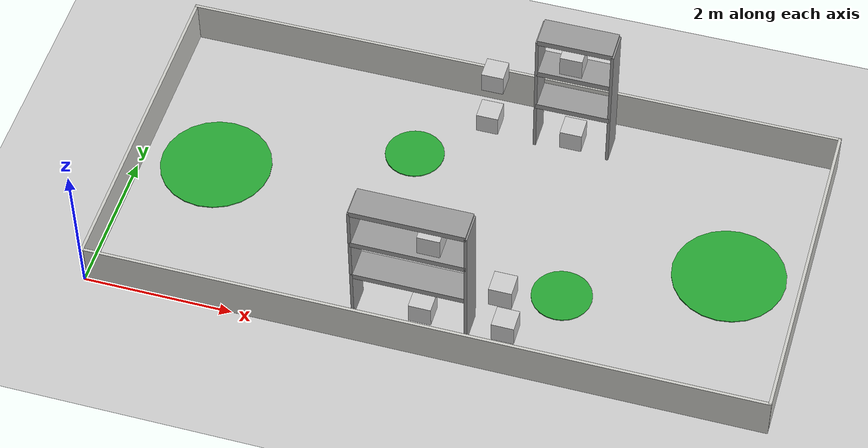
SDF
<sdf version="1.7">
 <world name="default">
  <model name="ground_plane">
   <static>1</static>
   <link name="link">
    <collision name="collision">
     <geometry><plane><normal>0 0 1</normal><size>100 100</size></plane></geometry>
     <surface>
      <contact><collide_bitmask>65535</collide_bitmask></contact>
      <friction><ode><mu>100</mu><mu2>50</mu2></ode></friction>
     </surface>
    </collision>
    <visual name="visual">
     <cast_shadows>0</cast_shadows>
     <geometry><plane><normal>0 0 1</normal><size>100 100</size></plane></geometry>
     <material>
      <script><uri>file://media/materials/scripts/gazebo.material</uri><name>Gazebo/Grey</name></script>
     </material>
    </visual>
   </link>
  </model>
  <model name="border">
   <pose>4.5 2.2438 0 0 -0 0</pose>
   <link name="Wall_21">
    <collision name="Wall_21_Collision">
     <geometry><box><size>9 0.04 0.6</size></box></geometry>
     <pose>0 0 0.3 0 -0 0</pose>
    </collision>
    <visual name="Wall_21_Visual">
     <pose>0 0 0.3 0 -0 0</pose>
     <geometry><box><size>9 0.04 0.6</size></box></geometry>
     <material>
      <script><uri>file://media/materials/scripts/gazebo.material</uri><name>Gazebo/CeilingTiled</name></script>
      <ambient>0.996078 0.47451 0.0196078 1</ambient>
     </material>
     <meta><layer>0</layer></meta>
    </visual>
    <pose>0 2.225 0 0 -0 0</pose>
   </link>
   <link name="Wall_23">
    <collision name="Wall_23_Collision">
     <geometry><box><size>4.49 0.04 0.6</size></box></geometry>
     <pose>0 0 0.3 0 -0 0</pose>
    </collision>
    <visual name="Wall_23_Visual">
     <pose>0 0 0.3 0 -0 0</pose>
     <geometry><box><size>4.49 0.04 0.6</size></box></geometry>
     <material>
      <script><uri>file://media/materials/scripts/gazebo.material</uri><name>Gazebo/CeilingTiled</name></script>
      <ambient>0.996078 0.47451 0.0196078 1</ambient>
     </material>
     <meta><layer>0</layer></meta>
    </visual>
    <pose>-4.48 0 0 0 -0 -1.5708</pose>
   </link>
   <link name="Wall_26">
    <collision name="Wall_26_Collision">
     <geometry><box><size>9 0.04 0.6</size></box></geometry>
     <pose>0 0 0.3 0 -0 0</pose>
    </collision>
    <visual name="Wall_26_Visual">
     <pose>0 0 0.3 0 -0 0</pose>
     <geometry><box><size>9 0.04 0.6</size></box></geometry>
     <material>
      <script><uri>file://media/materials/scripts/gazebo.material</uri><name>Gazebo/CeilingTiled</name></script>
      <ambient>0.996078 0.47451 0.0196078 1</ambient>
     </material>
     <meta><layer>0</layer></meta>
    </visual>
    <pose>0 -2.225 0 0 -0 0</pose>
   </link>
   <link name="Wall_28">
    <collision name="Wall_28_Collision">
     <geometry><box><size>4.49 0.04 0.6</size></box></geometry>
     <pose>0 0 0.3 0 -0 0</pose>
    </collision>
    <visual name="Wall_28_Visual">
     <pose>0 0 0.3 0 -0 0</pose>
     <geometry><box><size>4.49 0.04 0.6</size></box></geometry>
     <material>
      <script><uri>file://media/materials/scripts/gazebo.material</uri><name>Gazebo/CeilingTiled</name></script>
      <ambient>0.996078 0.47451 0.0196078 1</ambient>
     </material>
     <meta><layer>0</layer></meta>
    </visual>
    <pose>4.48 0 0 0 -0 -1.5708</pose>
   </link>
   <static>1</static>
  </model>
  <model name="sign">
   <static>1</static>
   <link name="link_1">
    <inertial>
     <mass>0.0144476</mass>
     <inertia>
      <ixx>0.00090323</ixx>
      <ixy>0</ixy>
      <ixz>0</ixz>
      <iyy>0.00090323</iyy>
      <iyz>0</iyz>
      <izz>0.00180595</izz>
     </inertia>
    </inertial>
    <pose>-3.625 -0 0 0 -0 0</pose>
    <visual name="visual">
     <geometry><cylinder><radius>0.75</radius><length>0.014471</length></cylinder></geometry>
     <material>
      <lighting>1</lighting>
      <script><uri>file://media/materials/scripts/gazebo.material</uri><name>Gazebo/Green</name></script>
      <shader type="pixel"><normal_map>__default__</normal_map></shader>
      <ambient>0.3 0.3 0.3 1</ambient>
      <diffuse>0.7 0.7 0.7 1</diffuse>
      <specular>0.01 0.01 0.01 1</specular>
      <emissive>0 0 0 1</emissive>
     </material>
    </visual>
    <collision name="collision">
     <geometry><cylinder><radius>0.75</radius><length>0.014471</length></cylinder></geometry>
     <surface>
      <friction>
       <ode><mu>1</mu><mu2>1</mu2><fdir1>0 0 0</fdir1><slip1>0</slip1><slip2>0</slip2></ode>
       <torsional>
        <coefficient>1</coefficient>
        <patch_radius>0</patch_radius>
        <surface_radius>0</surface_radius>
        <use_patch_radius>1</use_patch_radius>
        <ode><slip>0</slip></ode>
       </torsional>
      </friction>
      <bounce><restitution_coefficient>0</restitution_coefficient><threshold>1e+06</threshold></bounce>
      <contact>
       <collide_without_contact>0</collide_without_contact>
       <collide_without_contact_bitmask>1</collide_without_contact_bitmask>
       <collide_bitmask>1</collide_bitmask>
       <ode>
        <soft_cfm>0</soft_cfm>
        <soft_erp>0.2</soft_erp>
        <kp>1e+13</kp>
        <kd>1</kd>
        <max_vel>0.01</max_vel>
        <min_depth>0</min_depth>
       </ode>
       <bullet>
        <split_impulse>1</split_impulse>
        <split_impulse_penetration_threshold>-0.01</split_impulse_penetration_threshold>
        <soft_cfm>0</soft_cfm>
        <soft_erp>0.2</soft_erp>
        <kp>1e+13</kp>
        <kd>1</kd>
       </bullet>
      </contact>
     </surface>
    </collision>
   </link>
   <link name="link_1_clone">
    <inertial>
     <mass>0.0144476</mass>
     <inertia>
      <ixx>0.00090323</ixx>
      <ixy>0</ixy>
      <ixz>0</ixz>
      <iyy>0.00090323</iyy>
      <iyz>0</iyz>
      <izz>0.00180595</izz>
     </inertia>
    </inertial>
    <pose>3.375 -0 0 0 -0 0</pose>
    <visual name="visual">
     <geometry><cylinder><radius>0.75</radius><length>0.014471</length></cylinder></geometry>
     <material>
      <lighting>1</lighting>
      <script><uri>file://media/materials/scripts/gazebo.material</uri><name>Gazebo/Green</name></script>
      <shader type="pixel"><normal_map>__default__</normal_map></shader>
      <ambient>0.3 0.3 0.3 1</ambient>
      <diffuse>0.7 0.7 0.7 1</diffuse>
      <specular>0.01 0.01 0.01 1</specular>
      <emissive>0 0 0 1</emissive>
     </material>
    </visual>
    <collision name="collision">
     <geometry><cylinder><radius>0.75</radius><length>0.014471</length></cylinder></geometry>
     <surface>
      <friction>
       <ode><mu>1</mu><mu2>1</mu2><fdir1>0 0 0</fdir1><slip1>0</slip1><slip2>0</slip2></ode>
       <torsional>
        <coefficient>1</coefficient>
        <patch_radius>0</patch_radius>
        <surface_radius>0</surface_radius>
        <use_patch_radius>1</use_patch_radius>
        <ode><slip>0</slip></ode>
       </torsional>
      </friction>
      <bounce><restitution_coefficient>0</restitution_coefficient><threshold>1e+06</threshold></bounce>
      <contact>
       <collide_without_contact>0</collide_without_contact>
       <collide_without_contact_bitmask>1</collide_without_contact_bitmask>
       <collide_bitmask>1</collide_bitmask>
       <ode>
        <soft_cfm>0</soft_cfm>
        <soft_erp>0.2</soft_erp>
        <kp>1e+13</kp>
        <kd>1</kd>
        <max_vel>0.01</max_vel>
        <min_depth>0</min_depth>
       </ode>
       <bullet>
        <split_impulse>1</split_impulse>
        <split_impulse_penetration_threshold>-0.01</split_impulse_penetration_threshold>
        <soft_cfm>0</soft_cfm>
        <soft_erp>0.2</soft_erp>
        <kp>1e+13</kp>
        <kd>1</kd>
       </bullet>
      </contact>
     </surface>
    </collision>
   </link>
   <link name="link_1_clone_0">
    <inertial>
     <mass>0.0144476</mass>
     <inertia>
      <ixx>0.00090323</ixx>
      <ixy>0</ixy>
      <ixz>0</ixz>
      <iyy>0.00090323</iyy>
      <iyz>0</iyz>
      <izz>0.00180595</izz>
     </inertia>
    </inertial>
    <pose>-1.125 0.9 0 0 -0 0</pose>
    <visual name="visual">
     <geometry><cylinder><radius>0.4</radius><length>0.014471</length></cylinder></geometry>
     <material>
      <lighting>1</lighting>
      <script><uri>file://media/materials/scripts/gazebo.material</uri><name>Gazebo/Green</name></script>
      <shader type="pixel"><normal_map>__default__</normal_map></shader>
      <ambient>0.3 0.3 0.3 1</ambient>
      <diffuse>0.7 0.7 0.7 1</diffuse>
      <specular>0.01 0.01 0.01 1</specular>
      <emissive>0 0 0 1</emissive>
      <texture><diffuse>sign_1.png</diffuse></texture>
     </material>
    </visual>
    <collision name="collision">
     <geometry><cylinder><radius>0.4</radius><length>0.014471</length></cylinder></geometry>
     <surface>
      <friction>
       <ode><mu>1</mu><mu2>1</mu2><fdir1>0 0 0</fdir1><slip1>0</slip1><slip2>0</slip2></ode>
       <torsional>
        <coefficient>1</coefficient>
        <patch_radius>0</patch_radius>
        <surface_radius>0</surface_radius>
        <use_patch_radius>1</use_patch_radius>
        <ode><slip>0</slip></ode>
       </torsional>
      </friction>
      <bounce><restitution_coefficient>0</restitution_coefficient><threshold>1e+06</threshold></bounce>
      <contact>
       <collide_without_contact>0</collide_without_contact>
       <collide_without_contact_bitmask>1</collide_without_contact_bitmask>
       <collide_bitmask>1</collide_bitmask>
       <ode>
        <soft_cfm>0</soft_cfm>
        <soft_erp>0.2</soft_erp>
        <kp>1e+13</kp>
        <kd>1</kd>
        <max_vel>0.01</max_vel>
        <min_depth>0</min_depth>
       </ode>
       <bullet>
        <split_impulse>1</split_impulse>
        <split_impulse_penetration_threshold>-0.01</split_impulse_penetration_threshold>
        <soft_cfm>0</soft_cfm>
        <soft_erp>0.2</soft_erp>
        <kp>1e+13</kp>
        <kd>1</kd>
       </bullet>
      </contact>
     </surface>
    </collision>
   </link>
   <link name="link_1_clone_0_clone">
    <inertial>
     <mass>0.0144476</mass>
     <inertia>
      <ixx>0.00090323</ixx>
      <ixy>0</ixy>
      <ixz>0</ixz>
      <iyy>0.00090323</iyy>
      <iyz>0</iyz>
      <izz>0.00180595</izz>
     </inertia>
    </inertial>
    <pose>1.375 -0.9 0 0 -0 0</pose>
    <visual name="visual">
     <geometry><cylinder><radius>0.4</radius><length>0.014471</length></cylinder></geometry>
     <material>
      <lighting>1</lighting>
      <script><uri>file://media/materials/scripts/gazebo.material</uri><name>Gazebo/Green</name></script>
      <shader type="pixel"><normal_map>__default__</normal_map></shader>
      <ambient>0.3 0.3 0.3 1</ambient>
      <diffuse>0.7 0.7 0.7 1</diffuse>
      <specular>0.01 0.01 0.01 1</specular>
      <emissive>0 0 0 1</emissive>
      <texture><diffuse>sign_2.png</diffuse></texture>
     </material>
    </visual>
    <collision name="collision">
     <geometry><cylinder><radius>0.4</radius><length>0.014471</length></cylinder></geometry>
     <surface>
      <friction>
       <ode><mu>1</mu><mu2>1</mu2><fdir1>0 0 0</fdir1><slip1>0</slip1><slip2>0</slip2></ode>
       <torsional>
        <coefficient>1</coefficient>
        <patch_radius>0</patch_radius>
        <surface_radius>0</surface_radius>
        <use_patch_radius>1</use_patch_radius>
        <ode><slip>0</slip></ode>
       </torsional>
      </friction>
      <bounce><restitution_coefficient>0</restitution_coefficient><threshold>1e+06</threshold></bounce>
      <contact>
       <collide_without_contact>0</collide_without_contact>
       <collide_without_contact_bitmask>1</collide_without_contact_bitmask>
       <collide_bitmask>1</collide_bitmask>
       <ode>
        <soft_cfm>0</soft_cfm>
        <soft_erp>0.2</soft_erp>
        <kp>1e+13</kp>
        <kd>1</kd>
        <max_vel>0.01</max_vel>
        <min_depth>0</min_depth>
       </ode>
       <bullet>
        <split_impulse>1</split_impulse>
        <split_impulse_penetration_threshold>-0.01</split_impulse_penetration_threshold>
        <soft_cfm>0</soft_cfm>
        <soft_erp>0.2</soft_erp>
        <kp>1e+13</kp>
        <kd>1</kd>
       </bullet>
      </contact>
     </surface>
    </collision>
   </link>
   <static>0</static>
   <pose>4.63 2.3 0.007235 0 -0 0</pose>
  </model>
  <model name="Shelf_2">
   <static>1</static>
   <link name="link_3">
    <inertial>
     <mass>1</mass>
     <inertia>
      <ixx>0.166667</ixx>
      <ixy>0</ixy>
      <ixz>0</ixz>
      <iyy>0.166667</iyy>
      <iyz>0</iyz>
      <izz>0.166667</izz>
     </inertia>
    </inertial>
    <pose>-0.5 0 -0.238 0 -0 0</pose>
    <visual name="visual">
     <geometry><box><size>0.04 0.4 2</size></box></geometry>
     <material>
      <lighting>1</lighting>
      <script><uri>file://media/materials/scripts/gazebo.material</uri><name>Gazebo/Grey</name></script>
      <shader type="pixel"><normal_map>__default__</normal_map></shader>
      <ambient>0.3 0.3 0.3 1</ambient>
      <diffuse>0.7 0.7 0.7 1</diffuse>
      <specular>0.01 0.01 0.01 1</specular>
      <emissive>0 0 0 1</emissive>
     </material>
    </visual>
    <collision name="collision">
     <geometry><box><size>0.04 0.4 2</size></box></geometry>
     <surface>
      <friction>
       <ode><mu>1</mu><mu2>1</mu2><fdir1>0 0 0</fdir1><slip1>0</slip1><slip2>0</slip2></ode>
       <torsional>
        <coefficient>1</coefficient>
        <patch_radius>0</patch_radius>
        <surface_radius>0</surface_radius>
        <use_patch_radius>1</use_patch_radius>
        <ode><slip>0</slip></ode>
       </torsional>
      </friction>
      <bounce><restitution_coefficient>0</restitution_coefficient><threshold>1e+06</threshold></bounce>
      <contact>
       <collide_without_contact>0</collide_without_contact>
       <collide_without_contact_bitmask>1</collide_without_contact_bitmask>
       <collide_bitmask>1</collide_bitmask>
       <ode>
        <soft_cfm>0</soft_cfm>
        <soft_erp>0.2</soft_erp>
        <kp>1e+13</kp>
        <kd>1</kd>
        <max_vel>0.01</max_vel>
        <min_depth>0</min_depth>
       </ode>
       <bullet>
        <split_impulse>1</split_impulse>
        <split_impulse_penetration_threshold>-0.01</split_impulse_penetration_threshold>
        <soft_cfm>0</soft_cfm>
        <soft_erp>0.2</soft_erp>
        <kp>1e+13</kp>
        <kd>1</kd>
       </bullet>
      </contact>
     </surface>
    </collision>
   </link>
   <link name="link_3_clone">
    <inertial>
     <mass>1</mass>
     <inertia>
      <ixx>0.166667</ixx>
      <ixy>0</ixy>
      <ixz>0</ixz>
      <iyy>0.166667</iyy>
      <iyz>0</iyz>
      <izz>0.166667</izz>
     </inertia>
    </inertial>
    <pose>0.5 0 -0.238 0 -0 0</pose>
    <visual name="visual">
     <geometry><box><size>0.04 0.4 2</size></box></geometry>
     <material>
      <lighting>1</lighting>
      <script><uri>file://media/materials/scripts/gazebo.material</uri><name>Gazebo/Grey</name></script>
      <shader type="pixel"><normal_map>__default__</normal_map></shader>
      <ambient>0.3 0.3 0.3 1</ambient>
      <diffuse>0.7 0.7 0.7 1</diffuse>
      <specular>0.01 0.01 0.01 1</specular>
      <emissive>0 0 0 1</emissive>
     </material>
    </visual>
    <collision name="collision">
     <geometry><box><size>0.04 0.4 2</size></box></geometry>
     <surface>
      <friction>
       <ode><mu>1</mu><mu2>1</mu2><fdir1>0 0 0</fdir1><slip1>0</slip1><slip2>0</slip2></ode>
       <torsional>
        <coefficient>1</coefficient>
        <patch_radius>0</patch_radius>
        <surface_radius>0</surface_radius>
        <use_patch_radius>1</use_patch_radius>
        <ode><slip>0</slip></ode>
       </torsional>
      </friction>
      <bounce><restitution_coefficient>0</restitution_coefficient><threshold>1e+06</threshold></bounce>
      <contact>
       <collide_without_contact>0</collide_without_contact>
       <collide_without_contact_bitmask>1</collide_without_contact_bitmask>
       <collide_bitmask>1</collide_bitmask>
       <ode>
        <soft_cfm>0</soft_cfm>
        <soft_erp>0.2</soft_erp>
        <kp>1e+13</kp>
        <kd>1</kd>
        <max_vel>0.01</max_vel>
        <min_depth>0</min_depth>
       </ode>
       <bullet>
        <split_impulse>1</split_impulse>
        <split_impulse_penetration_threshold>-0.01</split_impulse_penetration_threshold>
        <soft_cfm>0</soft_cfm>
        <soft_erp>0.2</soft_erp>
        <kp>1e+13</kp>
        <kd>1</kd>
       </bullet>
      </contact>
     </surface>
    </collision>
   </link>
   <link name="link_4">
    <inertial>
     <mass>1</mass>
     <inertia>
      <ixx>0.166667</ixx>
      <ixy>0</ixy>
      <ixz>0</ixz>
      <iyy>0.166667</iyy>
      <iyz>0</iyz>
      <izz>0.166667</izz>
     </inertia>
    </inertial>
    <pose>0 0 -0.458 0 -0 0</pose>
    <visual name="visual">
     <geometry><box><size>1 0.4 0.08</size></box></geometry>
     <material>
      <lighting>1</lighting>
      <script><uri>file://media/materials/scripts/gazebo.material</uri><name>Gazebo/Grey</name></script>
      <shader type="pixel"><normal_map>__default__</normal_map></shader>
      <ambient>0.3 0.3 0.3 1</ambient>
      <diffuse>0.7 0.7 0.7 1</diffuse>
      <specular>0.01 0.01 0.01 1</specular>
      <emissive>0 0 0 1</emissive>
     </material>
    </visual>
    <collision name="collision">
     <geometry><box><size>1 0.4 0.08</size></box></geometry>
     <surface>
      <friction>
       <ode><mu>1</mu><mu2>1</mu2><fdir1>0 0 0</fdir1><slip1>0</slip1><slip2>0</slip2></ode>
       <torsional>
        <coefficient>1</coefficient>
        <patch_radius>0</patch_radius>
        <surface_radius>0</surface_radius>
        <use_patch_radius>1</use_patch_radius>
        <ode><slip>0</slip></ode>
       </torsional>
      </friction>
      <bounce><restitution_coefficient>0</restitution_coefficient><threshold>1e+06</threshold></bounce>
      <contact>
       <collide_without_contact>0</collide_without_contact>
       <collide_without_contact_bitmask>1</collide_without_contact_bitmask>
       <collide_bitmask>1</collide_bitmask>
       <ode>
        <soft_cfm>0</soft_cfm>
        <soft_erp>0.2</soft_erp>
        <kp>1e+13</kp>
        <kd>1</kd>
        <max_vel>0.01</max_vel>
        <min_depth>0</min_depth>
       </ode>
       <bullet>
        <split_impulse>1</split_impulse>
        <split_impulse_penetration_threshold>-0.01</split_impulse_penetration_threshold>
        <soft_cfm>0</soft_cfm>
        <soft_erp>0.2</soft_erp>
        <kp>1e+13</kp>
        <kd>1</kd>
       </bullet>
      </contact>
     </surface>
    </collision>
   </link>
   <link name="link_4_clone">
    <inertial>
     <mass>1</mass>
     <inertia>
      <ixx>0.166667</ixx>
      <ixy>0</ixy>
      <ixz>0</ixz>
      <iyy>0.166667</iyy>
      <iyz>0</iyz>
      <izz>0.166667</izz>
     </inertia>
    </inertial>
    <pose>0 0 0.172 0 -0 0</pose>
    <visual name="visual">
     <geometry><box><size>1 0.4 0.08</size></box></geometry>
     <material>
      <lighting>1</lighting>
      <script><uri>file://media/materials/scripts/gazebo.material</uri><name>Gazebo/Grey</name></script>
      <shader type="pixel"><normal_map>__default__</normal_map></shader>
      <ambient>0.3 0.3 0.3 1</ambient>
      <diffuse>0.7 0.7 0.7 1</diffuse>
      <specular>0.01 0.01 0.01 1</specular>
      <emissive>0 0 0 1</emissive>
     </material>
    </visual>
    <collision name="collision">
     <geometry><box><size>1 0.4 0.08</size></box></geometry>
     <surface>
      <friction>
       <ode><mu>1</mu><mu2>1</mu2><fdir1>0 0 0</fdir1><slip1>0</slip1><slip2>0</slip2></ode>
       <torsional>
        <coefficient>1</coefficient>
        <patch_radius>0</patch_radius>
        <surface_radius>0</surface_radius>
        <use_patch_radius>1</use_patch_radius>
        <ode><slip>0</slip></ode>
       </torsional>
      </friction>
      <bounce><restitution_coefficient>0</restitution_coefficient><threshold>1e+06</threshold></bounce>
      <contact>
       <collide_without_contact>0</collide_without_contact>
       <collide_without_contact_bitmask>1</collide_without_contact_bitmask>
       <collide_bitmask>1</collide_bitmask>
       <ode>
        <soft_cfm>0</soft_cfm>
        <soft_erp>0.2</soft_erp>
        <kp>1e+13</kp>
        <kd>1</kd>
        <max_vel>0.01</max_vel>
        <min_depth>0</min_depth>
       </ode>
       <bullet>
        <split_impulse>1</split_impulse>
        <split_impulse_penetration_threshold>-0.01</split_impulse_penetration_threshold>
        <soft_cfm>0</soft_cfm>
        <soft_erp>0.2</soft_erp>
        <kp>1e+13</kp>
        <kd>1</kd>
       </bullet>
      </contact>
     </surface>
    </collision>
   </link>
   <link name="link_4_clone_clone">
    <inertial>
     <mass>1</mass>
     <inertia>
      <ixx>0.166667</ixx>
      <ixy>0</ixy>
      <ixz>0</ixz>
      <iyy>0.166667</iyy>
      <iyz>0</iyz>
      <izz>0.166667</izz>
     </inertia>
    </inertial>
    <pose>0 0 0.762 0 -0 0</pose>
    <visual name="visual">
     <geometry><box><size>1 0.4 0.08</size></box></geometry>
     <material>
      <lighting>1</lighting>
      <script><uri>file://media/materials/scripts/gazebo.material</uri><name>Gazebo/Grey</name></script>
      <shader type="pixel"><normal_map>__default__</normal_map></shader>
      <ambient>0.3 0.3 0.3 1</ambient>
      <diffuse>0.7 0.7 0.7 1</diffuse>
      <specular>0.01 0.01 0.01 1</specular>
      <emissive>0 0 0 1</emissive>
     </material>
    </visual>
    <collision name="collision">
     <geometry><box><size>1 0.4 0.08</size></box></geometry>
     <surface>
      <friction>
       <ode><mu>1</mu><mu2>1</mu2><fdir1>0 0 0</fdir1><slip1>0</slip1><slip2>0</slip2></ode>
       <torsional>
        <coefficient>1</coefficient>
        <patch_radius>0</patch_radius>
        <surface_radius>0</surface_radius>
        <use_patch_radius>1</use_patch_radius>
        <ode><slip>0</slip></ode>
       </torsional>
      </friction>
      <bounce><restitution_coefficient>0</restitution_coefficient><threshold>1e+06</threshold></bounce>
      <contact>
       <collide_without_contact>0</collide_without_contact>
       <collide_without_contact_bitmask>1</collide_without_contact_bitmask>
       <collide_bitmask>1</collide_bitmask>
       <ode>
        <soft_cfm>0</soft_cfm>
        <soft_erp>0.2</soft_erp>
        <kp>1e+13</kp>
        <kd>1</kd>
        <max_vel>0.01</max_vel>
        <min_depth>0</min_depth>
       </ode>
       <bullet>
        <split_impulse>1</split_impulse>
        <split_impulse_penetration_threshold>-0.01</split_impulse_penetration_threshold>
        <soft_cfm>0</soft_cfm>
        <soft_erp>0.2</soft_erp>
        <kp>1e+13</kp>
        <kd>1</kd>
       </bullet>
      </contact>
     </surface>
    </collision>
   </link>
   <static>0</static>
   <pose>5.5 4 1.23 0 -0 0</pose>
  </model>
  <model name="Shelf_1_clone_0_clone">
   <static>1</static>
   <link name="link_0">
    <inertial>
     <mass>1</mass>
     <inertia>
      <ixx>0.166667</ixx>
      <ixy>0</ixy>
      <ixz>0</ixz>
      <iyy>0.166667</iyy>
      <iyz>0</iyz>
      <izz>0.166667</izz>
     </inertia>
    </inertial>
    <pose>-0.75 0 -0.238 0 -0 0</pose>
    <visual name="visual">
     <geometry><box><size>0.04 0.4 2</size></box></geometry>
     <material>
      <lighting>1</lighting>
      <script><uri>file://media/materials/scripts/gazebo.material</uri><name>Gazebo/Grey</name></script>
      <shader type="pixel"><normal_map>__default__</normal_map></shader>
      <ambient>0.3 0.3 0.3 1</ambient>
      <diffuse>0.7 0.7 0.7 1</diffuse>
      <specular>0.01 0.01 0.01 1</specular>
      <emissive>0 0 0 1</emissive>
     </material>
    </visual>
    <collision name="collision">
     <geometry><box><size>0.04 0.4 2</size></box></geometry>
     <surface>
      <friction>
       <ode><mu>1</mu><mu2>1</mu2><fdir1>0 0 0</fdir1><slip1>0</slip1><slip2>0</slip2></ode>
       <torsional>
        <coefficient>1</coefficient>
        <patch_radius>0</patch_radius>
        <surface_radius>0</surface_radius>
        <use_patch_radius>1</use_patch_radius>
        <ode><slip>0</slip></ode>
       </torsional>
      </friction>
      <bounce><restitution_coefficient>0</restitution_coefficient><threshold>1e+06</threshold></bounce>
      <contact>
       <collide_without_contact>0</collide_without_contact>
       <collide_without_contact_bitmask>1</collide_without_contact_bitmask>
       <collide_bitmask>1</collide_bitmask>
       <ode>
        <soft_cfm>0</soft_cfm>
        <soft_erp>0.2</soft_erp>
        <kp>1e+13</kp>
        <kd>1</kd>
        <max_vel>0.01</max_vel>
        <min_depth>0</min_depth>
       </ode>
       <bullet>
        <split_impulse>1</split_impulse>
        <split_impulse_penetration_threshold>-0.01</split_impulse_penetration_threshold>
        <soft_cfm>0</soft_cfm>
        <soft_erp>0.2</soft_erp>
        <kp>1e+13</kp>
        <kd>1</kd>
       </bullet>
      </contact>
     </surface>
    </collision>
   </link>
   <link name="link_0_clone">
    <inertial>
     <mass>1</mass>
     <inertia>
      <ixx>0.166667</ixx>
      <ixy>0</ixy>
      <ixz>0</ixz>
      <iyy>0.166667</iyy>
      <iyz>0</iyz>
      <izz>0.166667</izz>
     </inertia>
    </inertial>
    <pose>0.75 0 -0.238 0 -0 0</pose>
    <visual name="visual">
     <geometry><box><size>0.04 0.4 2</size></box></geometry>
     <material>
      <lighting>1</lighting>
      <script><uri>file://media/materials/scripts/gazebo.material</uri><name>Gazebo/Grey</name></script>
      <shader type="pixel"><normal_map>__default__</normal_map></shader>
      <ambient>0.3 0.3 0.3 1</ambient>
      <diffuse>0.7 0.7 0.7 1</diffuse>
      <specular>0.01 0.01 0.01 1</specular>
      <emissive>0 0 0 1</emissive>
     </material>
    </visual>
    <collision name="collision">
     <geometry><box><size>0.04 0.4 2</size></box></geometry>
     <surface>
      <friction>
       <ode><mu>1</mu><mu2>1</mu2><fdir1>0 0 0</fdir1><slip1>0</slip1><slip2>0</slip2></ode>
       <torsional>
        <coefficient>1</coefficient>
        <patch_radius>0</patch_radius>
        <surface_radius>0</surface_radius>
        <use_patch_radius>1</use_patch_radius>
        <ode><slip>0</slip></ode>
       </torsional>
      </friction>
      <bounce><restitution_coefficient>0</restitution_coefficient><threshold>1e+06</threshold></bounce>
      <contact>
       <collide_without_contact>0</collide_without_contact>
       <collide_without_contact_bitmask>1</collide_without_contact_bitmask>
       <collide_bitmask>1</collide_bitmask>
       <ode>
        <soft_cfm>0</soft_cfm>
        <soft_erp>0.2</soft_erp>
        <kp>1e+13</kp>
        <kd>1</kd>
        <max_vel>0.01</max_vel>
        <min_depth>0</min_depth>
       </ode>
       <bullet>
        <split_impulse>1</split_impulse>
        <split_impulse_penetration_threshold>-0.01</split_impulse_penetration_threshold>
        <soft_cfm>0</soft_cfm>
        <soft_erp>0.2</soft_erp>
        <kp>1e+13</kp>
        <kd>1</kd>
       </bullet>
      </contact>
     </surface>
    </collision>
   </link>
   <link name="link_1">
    <inertial>
     <mass>1</mass>
     <inertia>
      <ixx>0.166667</ixx>
      <ixy>0</ixy>
      <ixz>0</ixz>
      <iyy>0.166667</iyy>
      <iyz>0</iyz>
      <izz>0.166667</izz>
     </inertia>
    </inertial>
    <pose>0 0 -0.458 0 -0 0</pose>
    <visual name="visual">
     <geometry><box><size>1.5 0.4 0.08</size></box></geometry>
     <material>
      <lighting>1</lighting>
      <script><uri>file://media/materials/scripts/gazebo.material</uri><name>Gazebo/Grey</name></script>
      <shader type="pixel"><normal_map>__default__</normal_map></shader>
      <ambient>0.3 0.3 0.3 1</ambient>
      <diffuse>0.7 0.7 0.7 1</diffuse>
      <specular>0.01 0.01 0.01 1</specular>
      <emissive>0 0 0 1</emissive>
     </material>
    </visual>
    <collision name="collision">
     <geometry><box><size>1.5 0.4 0.08</size></box></geometry>
     <surface>
      <friction>
       <ode><mu>1</mu><mu2>1</mu2><fdir1>0 0 0</fdir1><slip1>0</slip1><slip2>0</slip2></ode>
       <torsional>
        <coefficient>1</coefficient>
        <patch_radius>0</patch_radius>
        <surface_radius>0</surface_radius>
        <use_patch_radius>1</use_patch_radius>
        <ode><slip>0</slip></ode>
       </torsional>
      </friction>
      <bounce><restitution_coefficient>0</restitution_coefficient><threshold>1e+06</threshold></bounce>
      <contact>
       <collide_without_contact>0</collide_without_contact>
       <collide_without_contact_bitmask>1</collide_without_contact_bitmask>
       <collide_bitmask>1</collide_bitmask>
       <ode>
        <soft_cfm>0</soft_cfm>
        <soft_erp>0.2</soft_erp>
        <kp>1e+13</kp>
        <kd>1</kd>
        <max_vel>0.01</max_vel>
        <min_depth>0</min_depth>
       </ode>
       <bullet>
        <split_impulse>1</split_impulse>
        <split_impulse_penetration_threshold>-0.01</split_impulse_penetration_threshold>
        <soft_cfm>0</soft_cfm>
        <soft_erp>0.2</soft_erp>
        <kp>1e+13</kp>
        <kd>1</kd>
       </bullet>
      </contact>
     </surface>
    </collision>
   </link>
   <link name="link_1_clone">
    <inertial>
     <mass>1</mass>
     <inertia>
      <ixx>0.166667</ixx>
      <ixy>0</ixy>
      <ixz>0</ixz>
      <iyy>0.166667</iyy>
      <iyz>0</iyz>
      <izz>0.166667</izz>
     </inertia>
    </inertial>
    <pose>0 0 0.172 0 -0 0</pose>
    <visual name="visual">
     <geometry><box><size>1.5 0.4 0.08</size></box></geometry>
     <material>
      <lighting>1</lighting>
      <script><uri>file://media/materials/scripts/gazebo.material</uri><name>Gazebo/Grey</name></script>
      <shader type="pixel"><normal_map>__default__</normal_map></shader>
      <ambient>0.3 0.3 0.3 1</ambient>
      <diffuse>0.7 0.7 0.7 1</diffuse>
      <specular>0.01 0.01 0.01 1</specular>
      <emissive>0 0 0 1</emissive>
     </material>
    </visual>
    <collision name="collision">
     <geometry><box><size>1.5 0.4 0.08</size></box></geometry>
     <surface>
      <friction>
       <ode><mu>1</mu><mu2>1</mu2><fdir1>0 0 0</fdir1><slip1>0</slip1><slip2>0</slip2></ode>
       <torsional>
        <coefficient>1</coefficient>
        <patch_radius>0</patch_radius>
        <surface_radius>0</surface_radius>
        <use_patch_radius>1</use_patch_radius>
        <ode><slip>0</slip></ode>
       </torsional>
      </friction>
      <bounce><restitution_coefficient>0</restitution_coefficient><threshold>1e+06</threshold></bounce>
      <contact>
       <collide_without_contact>0</collide_without_contact>
       <collide_without_contact_bitmask>1</collide_without_contact_bitmask>
       <collide_bitmask>1</collide_bitmask>
       <ode>
        <soft_cfm>0</soft_cfm>
        <soft_erp>0.2</soft_erp>
        <kp>1e+13</kp>
        <kd>1</kd>
        <max_vel>0.01</max_vel>
        <min_depth>0</min_depth>
       </ode>
       <bullet>
        <split_impulse>1</split_impulse>
        <split_impulse_penetration_threshold>-0.01</split_impulse_penetration_threshold>
        <soft_cfm>0</soft_cfm>
        <soft_erp>0.2</soft_erp>
        <kp>1e+13</kp>
        <kd>1</kd>
       </bullet>
      </contact>
     </surface>
    </collision>
   </link>
   <link name="link_1_clone_clone">
    <inertial>
     <mass>1</mass>
     <inertia>
      <ixx>0.166667</ixx>
      <ixy>0</ixy>
      <ixz>0</ixz>
      <iyy>0.166667</iyy>
      <iyz>0</iyz>
      <izz>0.166667</izz>
     </inertia>
    </inertial>
    <pose>0 0 0.762 0 -0 0</pose>
    <visual name="visual">
     <geometry><box><size>1.5 0.4 0.08</size></box></geometry>
     <material>
      <lighting>1</lighting>
      <script><uri>file://media/materials/scripts/gazebo.material</uri><name>Gazebo/Grey</name></script>
      <shader type="pixel"><normal_map>__default__</normal_map></shader>
      <ambient>0.3 0.3 0.3 1</ambient>
      <diffuse>0.7 0.7 0.7 1</diffuse>
      <specular>0.01 0.01 0.01 1</specular>
      <emissive>0 0 0 1</emissive>
     </material>
    </visual>
    <collision name="collision">
     <geometry><box><size>1.5 0.4 0.08</size></box></geometry>
     <surface>
      <friction>
       <ode><mu>1</mu><mu2>1</mu2><fdir1>0 0 0</fdir1><slip1>0</slip1><slip2>0</slip2></ode>
       <torsional>
        <coefficient>1</coefficient>
        <patch_radius>0</patch_radius>
        <surface_radius>0</surface_radius>
        <use_patch_radius>1</use_patch_radius>
        <ode><slip>0</slip></ode>
       </torsional>
      </friction>
      <bounce><restitution_coefficient>0</restitution_coefficient><threshold>1e+06</threshold></bounce>
      <contact>
       <collide_without_contact>0</collide_without_contact>
       <collide_without_contact_bitmask>1</collide_without_contact_bitmask>
       <collide_bitmask>1</collide_bitmask>
       <ode>
        <soft_cfm>0</soft_cfm>
        <soft_erp>0.2</soft_erp>
        <kp>1e+13</kp>
        <kd>1</kd>
        <max_vel>0.01</max_vel>
        <min_depth>0</min_depth>
       </ode>
       <bullet>
        <split_impulse>1</split_impulse>
        <split_impulse_penetration_threshold>-0.01</split_impulse_penetration_threshold>
        <soft_cfm>0</soft_cfm>
        <soft_erp>0.2</soft_erp>
        <kp>1e+13</kp>
        <kd>1</kd>
       </bullet>
      </contact>
     </surface>
    </collision>
   </link>
   <static>0</static>
   <pose>4.25 0.6 1.23 0 -0 0</pose>
  </model>
  <model name="box_1_6">
   <link name="link">
    <inertial>
     <mass>1</mass>
     <inertia>
      <ixx>0.166667</ixx>
      <ixy>0</ixy>
      <ixz>0</ixz>
      <iyy>0.166667</iyy>
      <iyz>0</iyz>
      <izz>0.166667</izz>
     </inertia>
    </inertial>
    <visual name="visual">
     <geometry><box><size>0.3 0.3 0.3</size></box></geometry>
     <material>
      <script>
       <uri>file://materials_user/scripts</uri>
       <uri>file://materials_user/textures</uri>
       <name>YMC/BoxBanana</name>
      </script>
      <shader type="pixel"><normal_map>__default__</normal_map></shader>
      <ambient>0.8 0.8 0.8 1</ambient>
      <diffuse>0.8 0.8 0.8 1</diffuse>
      <specular>0.5 0.5 0.5 1</specular>
      <emissive>0.5 0.5 0.5 1</emissive>
     </material>
    </visual>
    <collision name="collision">
     <geometry><box><size>0.3 0.3 0.3</size></box></geometry>
     <surface>
      <friction>
       <ode><mu>1</mu><mu2>1</mu2><fdir1>0 0 0</fdir1><slip1>0</slip1><slip2>0</slip2></ode>
       <torsional>
        <coefficient>1</coefficient>
        <patch_radius>0</patch_radius>
        <surface_radius>0</surface_radius>
        <use_patch_radius>1</use_patch_radius>
        <ode><slip>0</slip></ode>
       </torsional>
      </friction>
      <bounce><restitution_coefficient>0</restitution_coefficient><threshold>1e+06</threshold></bounce>
      <contact>
       <collide_without_contact>0</collide_without_contact>
       <collide_without_contact_bitmask>1</collide_without_contact_bitmask>
       <collide_bitmask>1</collide_bitmask>
       <ode>
        <soft_cfm>0</soft_cfm>
        <soft_erp>0.2</soft_erp>
        <kp>1e+13</kp>
        <kd>1</kd>
        <max_vel>0.01</max_vel>
        <min_depth>0</min_depth>
       </ode>
       <bullet>
        <split_impulse>1</split_impulse>
        <split_impulse_penetration_threshold>-0.01</split_impulse_penetration_threshold>
        <soft_cfm>0</soft_cfm>
        <soft_erp>0.2</soft_erp>
        <kp>1e+13</kp>
        <kd>1</kd>
       </bullet>
      </contact>
     </surface>
    </collision>
   </link>
   <static>0</static>
   <pose>4.39334 4 0.961992 3e-06 5e-06 -3e-06</pose>
  </model>
  <model name="box_1_3">
   <link name="link">
    <inertial>
     <mass>1</mass>
     <inertia>
      <ixx>0.166667</ixx>
      <ixy>0</ixy>
      <ixz>0</ixz>
      <iyy>0.166667</iyy>
      <iyz>0</iyz>
      <izz>0.166667</izz>
     </inertia>
    </inertial>
    <visual name="visual">
     <geometry><box><size>0.3 0.3 0.3</size></box></geometry>
     <material>
      <script>
       <uri>file://materials_user/scripts</uri>
       <uri>file://materials_user/textures</uri>
       <name>YMC/BoxBanana</name>
      </script>
      <shader type="pixel"><normal_map>__default__</normal_map></shader>
      <ambient>0.8 0.8 0.8 1</ambient>
      <diffuse>0.8 0.8 0.8 1</diffuse>
      <specular>0.5 0.5 0.5 1</specular>
      <emissive>0.5 0.5 0.5 1</emissive>
     </material>
    </visual>
    <collision name="collision">
     <geometry><box><size>0.3 0.3 0.3</size></box></geometry>
     <surface>
      <friction>
       <ode><mu>1</mu><mu2>1</mu2><fdir1>0 0 0</fdir1><slip1>0</slip1><slip2>0</slip2></ode>
       <torsional>
        <coefficient>1</coefficient>
        <patch_radius>0</patch_radius>
        <surface_radius>0</surface_radius>
        <use_patch_radius>1</use_patch_radius>
        <ode><slip>0</slip></ode>
       </torsional>
      </friction>
      <bounce><restitution_coefficient>0</restitution_coefficient><threshold>1e+06</threshold></bounce>
      <contact>
       <collide_without_contact>0</collide_without_contact>
       <collide_without_contact_bitmask>1</collide_without_contact_bitmask>
       <collide_bitmask>1</collide_bitmask>
       <ode>
        <soft_cfm>0</soft_cfm>
        <soft_erp>0.2</soft_erp>
        <kp>1e+13</kp>
        <kd>1</kd>
        <max_vel>0.01</max_vel>
        <min_depth>0</min_depth>
       </ode>
       <bullet>
        <split_impulse>1</split_impulse>
        <split_impulse_penetration_threshold>-0.01</split_impulse_penetration_threshold>
        <soft_cfm>0</soft_cfm>
        <soft_erp>0.2</soft_erp>
        <kp>1e+13</kp>
        <kd>1</kd>
       </bullet>
      </contact>
     </surface>
    </collision>
   </link>
   <static>0</static>
   <pose>5.44793 4 1.59199 -6e-06 -3e-06 -2e-06</pose>
  </model>
  <model name="box_2_2">
   <link name="link">
    <inertial>
     <mass>1</mass>
     <inertia>
      <ixx>0.166667</ixx>
      <ixy>0</ixy>
      <ixz>0</ixz>
      <iyy>0.166667</iyy>
      <iyz>0</iyz>
      <izz>0.166667</izz>
     </inertia>
    </inertial>
    <visual name="visual">
     <geometry><box><size>0.3 0.3 0.3</size></box></geometry>
     <material>
      <script>
       <uri>file://materials_user/scripts</uri>
       <uri>file://materials_user/textures</uri>
       <name>YMC/BoxBanana</name>
      </script>
      <shader type="pixel"><normal_map>__default__</normal_map></shader>
      <ambient>0.8 0.8 0.8 1</ambient>
      <diffuse>0.8 0.8 0.8 1</diffuse>
      <specular>0.5 0.5 0.5 1</specular>
      <emissive>0.5 0.5 0.5 1</emissive>
     </material>
    </visual>
    <collision name="collision">
     <geometry><box><size>0.3 0.3 0.3</size></box></geometry>
     <surface>
      <friction>
       <ode><mu>1</mu><mu2>1</mu2><fdir1>0 0 0</fdir1><slip1>0</slip1><slip2>0</slip2></ode>
       <torsional>
        <coefficient>1</coefficient>
        <patch_radius>0</patch_radius>
        <surface_radius>0</surface_radius>
        <use_patch_radius>1</use_patch_radius>
        <ode><slip>0</slip></ode>
       </torsional>
      </friction>
      <bounce><restitution_coefficient>0</restitution_coefficient><threshold>1e+06</threshold></bounce>
      <contact>
       <collide_without_contact>0</collide_without_contact>
       <collide_without_contact_bitmask>1</collide_without_contact_bitmask>
       <collide_bitmask>1</collide_bitmask>
       <ode>
        <soft_cfm>0</soft_cfm>
        <soft_erp>0.2</soft_erp>
        <kp>1e+13</kp>
        <kd>1</kd>
        <max_vel>0.01</max_vel>
        <min_depth>0</min_depth>
       </ode>
       <bullet>
        <split_impulse>1</split_impulse>
        <split_impulse_penetration_threshold>-0.01</split_impulse_penetration_threshold>
        <soft_cfm>0</soft_cfm>
        <soft_erp>0.2</soft_erp>
        <kp>1e+13</kp>
        <kd>1</kd>
       </bullet>
      </contact>
     </surface>
    </collision>
   </link>
   <static>0</static>
   <pose>4.50221 0.622148 1.592 0 0 -5e-06</pose>
  </model>
  <model name="box_2_7">
   <link name="link">
    <inertial>
     <mass>1</mass>
     <inertia>
      <ixx>0.166667</ixx>
      <ixy>0</ixy>
      <ixz>0</ixz>
      <iyy>0.166667</iyy>
      <iyz>0</iyz>
      <izz>0.166667</izz>
     </inertia>
    </inertial>
    <visual name="visual">
     <geometry><box><size>0.3 0.3 0.3</size></box></geometry>
     <material>
      <script>
       <uri>file://materials_user/scripts</uri>
       <uri>file://materials_user/textures</uri>
       <name>YMC/BoxBanana</name>
      </script>
      <shader type="pixel"><normal_map>__default__</normal_map></shader>
      <ambient>0.8 0.8 0.8 1</ambient>
      <diffuse>0.8 0.8 0.8 1</diffuse>
      <specular>0.5 0.5 0.5 1</specular>
      <emissive>0.5 0.5 0.5 1</emissive>
     </material>
    </visual>
    <collision name="collision">
     <geometry><box><size>0.3 0.3 0.3</size></box></geometry>
     <surface>
      <friction>
       <ode><mu>1</mu><mu2>1</mu2><fdir1>0 0 0</fdir1><slip1>0</slip1><slip2>0</slip2></ode>
       <torsional>
        <coefficient>1</coefficient>
        <patch_radius>0</patch_radius>
        <surface_radius>0</surface_radius>
        <use_patch_radius>1</use_patch_radius>
        <ode><slip>0</slip></ode>
       </torsional>
      </friction>
      <bounce><restitution_coefficient>0</restitution_coefficient><threshold>1e+06</threshold></bounce>
      <contact>
       <collide_without_contact>0</collide_without_contact>
       <collide_without_contact_bitmask>1</collide_without_contact_bitmask>
       <collide_bitmask>1</collide_bitmask>
       <ode>
        <soft_cfm>0</soft_cfm>
        <soft_erp>0.2</soft_erp>
        <kp>1e+13</kp>
        <kd>1</kd>
        <max_vel>0.01</max_vel>
        <min_depth>0</min_depth>
       </ode>
       <bullet>
        <split_impulse>1</split_impulse>
        <split_impulse_penetration_threshold>-0.01</split_impulse_penetration_threshold>
        <soft_cfm>0</soft_cfm>
        <soft_erp>0.2</soft_erp>
        <kp>1e+13</kp>
        <kd>1</kd>
       </bullet>
      </contact>
     </surface>
    </collision>
   </link>
   <static>0</static>
   <pose>5.44192 0.560849 0.961996 -6e-06 4e-06 -4e-06</pose>
  </model>
  <model name="box_1_10">
   <link name="link">
    <inertial>
     <mass>1</mass>
     <inertia>
      <ixx>0.166667</ixx>
      <ixy>0</ixy>
      <ixz>0</ixz>
      <iyy>0.166667</iyy>
      <iyz>0</iyz>
      <izz>0.166667</izz>
     </inertia>
    </inertial>
    <visual name="visual">
     <geometry><box><size>0.3 0.3 0.3</size></box></geometry>
     <material>
      <script>
       <uri>file://materials_user/scripts</uri>
       <uri>file://materials_user/textures</uri>
       <name>YMC/BoxBanana</name>
      </script>
      <shader type="pixel"><normal_map>__default__</normal_map></shader>
      <ambient>0.8 0.8 0.8 1</ambient>
      <diffuse>0.8 0.8 0.8 1</diffuse>
      <specular>0.5 0.5 0.5 1</specular>
      <emissive>0.5 0.5 0.5 1</emissive>
     </material>
    </visual>
    <collision name="collision">
     <geometry><box><size>0.3 0.3 0.3</size></box></geometry>
     <surface>
      <friction>
       <ode><mu>1</mu><mu2>1</mu2><fdir1>0 0 0</fdir1><slip1>0</slip1><slip2>0</slip2></ode>
       <torsional>
        <coefficient>1</coefficient>
        <patch_radius>0</patch_radius>
        <surface_radius>0</surface_radius>
        <use_patch_radius>1</use_patch_radius>
        <ode><slip>0</slip></ode>
       </torsional>
      </friction>
      <bounce><restitution_coefficient>0</restitution_coefficient><threshold>1e+06</threshold></bounce>
      <contact>
       <collide_without_contact>0</collide_without_contact>
       <collide_without_contact_bitmask>1</collide_without_contact_bitmask>
       <collide_bitmask>1</collide_bitmask>
       <ode>
        <soft_cfm>0</soft_cfm>
        <soft_erp>0.2</soft_erp>
        <kp>1e+13</kp>
        <kd>1</kd>
        <max_vel>0.01</max_vel>
        <min_depth>0</min_depth>
       </ode>
       <bullet>
        <split_impulse>1</split_impulse>
        <split_impulse_penetration_threshold>-0.01</split_impulse_penetration_threshold>
        <soft_cfm>0</soft_cfm>
        <soft_erp>0.2</soft_erp>
        <kp>1e+13</kp>
        <kd>1</kd>
       </bullet>
      </contact>
     </surface>
    </collision>
   </link>
   <static>0</static>
   <pose>4.33232 3.97995 0.154995 5e-06 4e-06 -6e-06</pose>
  </model>
  <model name="box_1_11">
   <link name="link">
    <inertial>
     <mass>1</mass>
     <inertia>
      <ixx>0.166667</ixx>
      <ixy>0</ixy>
      <ixz>0</ixz>
      <iyy>0.166667</iyy>
      <iyz>0</iyz>
      <izz>0.166667</izz>
     </inertia>
    </inertial>
    <visual name="visual">
     <geometry><box><size>0.3 0.3 0.3</size></box></geometry>
     <material>
      <script>
       <uri>file://materials_user/scripts</uri>
       <uri>file://materials_user/textures</uri>
       <name>YMC/BoxBanana</name>
      </script>
      <shader type="pixel"><normal_map>__default__</normal_map></shader>
      <ambient>0.8 0.8 0.8 1</ambient>
      <diffuse>0.8 0.8 0.8 1</diffuse>
      <specular>0.5 0.5 0.5 1</specular>
      <emissive>0.5 0.5 0.5 1</emissive>
     </material>
    </visual>
    <collision name="collision">
     <geometry><box><size>0.3 0.3 0.3</size></box></geometry>
     <surface>
      <friction>
       <ode><mu>1</mu><mu2>1</mu2><fdir1>0 0 0</fdir1><slip1>0</slip1><slip2>0</slip2></ode>
       <torsional>
        <coefficient>1</coefficient>
        <patch_radius>0</patch_radius>
        <surface_radius>0</surface_radius>
        <use_patch_radius>1</use_patch_radius>
        <ode><slip>0</slip></ode>
       </torsional>
      </friction>
      <bounce><restitution_coefficient>0</restitution_coefficient><threshold>1e+06</threshold></bounce>
      <contact>
       <collide_without_contact>0</collide_without_contact>
       <collide_without_contact_bitmask>1</collide_without_contact_bitmask>
       <collide_bitmask>1</collide_bitmask>
       <ode>
        <soft_cfm>0</soft_cfm>
        <soft_erp>0.2</soft_erp>
        <kp>1e+13</kp>
        <kd>1</kd>
        <max_vel>0.01</max_vel>
        <min_depth>0</min_depth>
       </ode>
       <bullet>
        <split_impulse>1</split_impulse>
        <split_impulse_penetration_threshold>-0.01</split_impulse_penetration_threshold>
        <soft_cfm>0</soft_cfm>
        <soft_erp>0.2</soft_erp>
        <kp>1e+13</kp>
        <kd>1</kd>
       </bullet>
      </contact>
     </surface>
    </collision>
   </link>
   <static>0</static>
   <pose>5.48658 3.98871 0.154995 -5e-06 -4e-06 -6e-06</pose>
  </model>
  <model name="box_2_10">
   <link name="link">
    <inertial>
     <mass>1</mass>
     <inertia>
      <ixx>0.166667</ixx>
      <ixy>0</ixy>
      <ixz>0</ixz>
      <iyy>0.166667</iyy>
      <iyz>0</iyz>
      <izz>0.166667</izz>
     </inertia>
    </inertial>
    <visual name="visual">
     <geometry><box><size>0.3 0.3 0.3</size></box></geometry>
     <material>
      <script>
       <uri>file://materials_user/scripts</uri>
       <uri>file://materials_user/textures</uri>
       <name>YMC/BoxBanana</name>
      </script>
      <shader type="pixel"><normal_map>__default__</normal_map></shader>
      <ambient>0.8 0.8 0.8 1</ambient>
      <diffuse>0.8 0.8 0.8 1</diffuse>
      <specular>0.5 0.5 0.5 1</specular>
      <emissive>0.5 0.5 0.5 1</emissive>
     </material>
    </visual>
    <collision name="collision">
     <geometry><box><size>0.3 0.3 0.3</size></box></geometry>
     <surface>
      <friction>
       <ode><mu>1</mu><mu2>1</mu2><fdir1>0 0 0</fdir1><slip1>0</slip1><slip2>0</slip2></ode>
       <torsional>
        <coefficient>1</coefficient>
        <patch_radius>0</patch_radius>
        <surface_radius>0</surface_radius>
        <use_patch_radius>1</use_patch_radius>
        <ode><slip>0</slip></ode>
       </torsional>
      </friction>
      <bounce><restitution_coefficient>0</restitution_coefficient><threshold>1e+06</threshold></bounce>
      <contact>
       <collide_without_contact>0</collide_without_contact>
       <collide_without_contact_bitmask>1</collide_without_contact_bitmask>
       <collide_bitmask>1</collide_bitmask>
       <ode>
        <soft_cfm>0</soft_cfm>
        <soft_erp>0.2</soft_erp>
        <kp>1e+13</kp>
        <kd>1</kd>
        <max_vel>0.01</max_vel>
        <min_depth>0</min_depth>
       </ode>
       <bullet>
        <split_impulse>1</split_impulse>
        <split_impulse_penetration_threshold>-0.01</split_impulse_penetration_threshold>
        <soft_cfm>0</soft_cfm>
        <soft_erp>0.2</soft_erp>
        <kp>1e+13</kp>
        <kd>1</kd>
       </bullet>
      </contact>
     </surface>
    </collision>
   </link>
   <static>0</static>
   <pose>4.36672 0.637282 0.154995 -5e-06 -4e-06 -6e-06</pose>
  </model>
  <model name="box_2_11">
   <link name="link">
    <inertial>
     <mass>1</mass>
     <inertia>
      <ixx>0.166667</ixx>
      <ixy>0</ixy>
      <ixz>0</ixz>
      <iyy>0.166667</iyy>
      <iyz>0</iyz>
      <izz>0.166667</izz>
     </inertia>
    </inertial>
    <visual name="visual">
     <geometry><box><size>0.3 0.3 0.3</size></box></geometry>
     <material>
      <script>
       <uri>file://materials_user/scripts</uri>
       <uri>file://materials_user/textures</uri>
       <name>YMC/BoxBanana</name>
      </script>
      <shader type="pixel"><normal_map>__default__</normal_map></shader>
      <ambient>0.8 0.8 0.8 1</ambient>
      <diffuse>0.8 0.8 0.8 1</diffuse>
      <specular>0.5 0.5 0.5 1</specular>
      <emissive>0.5 0.5 0.5 1</emissive>
     </material>
    </visual>
    <collision name="collision">
     <geometry><box><size>0.3 0.3 0.3</size></box></geometry>
     <surface>
      <friction>
       <ode><mu>1</mu><mu2>1</mu2><fdir1>0 0 0</fdir1><slip1>0</slip1><slip2>0</slip2></ode>
       <torsional>
        <coefficient>1</coefficient>
        <patch_radius>0</patch_radius>
        <surface_radius>0</surface_radius>
        <use_patch_radius>1</use_patch_radius>
        <ode><slip>0</slip></ode>
       </torsional>
      </friction>
      <bounce><restitution_coefficient>0</restitution_coefficient><threshold>1e+06</threshold></bounce>
      <contact>
       <collide_without_contact>0</collide_without_contact>
       <collide_without_contact_bitmask>1</collide_without_contact_bitmask>
       <collide_bitmask>1</collide_bitmask>
       <ode>
        <soft_cfm>0</soft_cfm>
        <soft_erp>0.2</soft_erp>
        <kp>1e+13</kp>
        <kd>1</kd>
        <max_vel>0.01</max_vel>
        <min_depth>0</min_depth>
       </ode>
       <bullet>
        <split_impulse>1</split_impulse>
        <split_impulse_penetration_threshold>-0.01</split_impulse_penetration_threshold>
        <soft_cfm>0</soft_cfm>
        <soft_erp>0.2</soft_erp>
        <kp>1e+13</kp>
        <kd>1</kd>
       </bullet>
      </contact>
     </surface>
    </collision>
   </link>
   <static>0</static>
   <pose>5.46146 0.632547 0.154995 -5e-06 -4e-06 -6e-06</pose>
  </model>
 </world>
</sdf>
